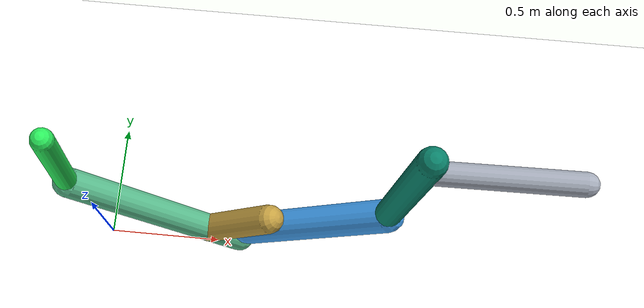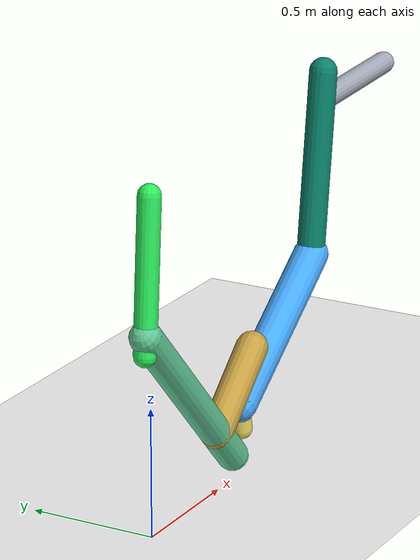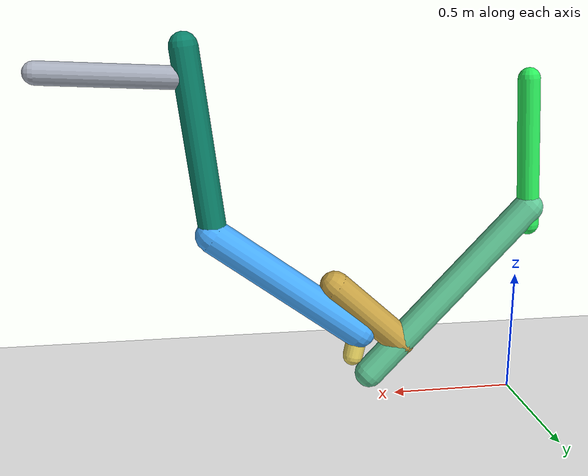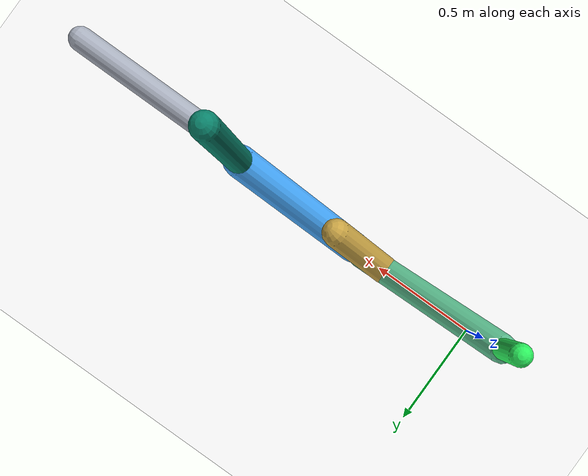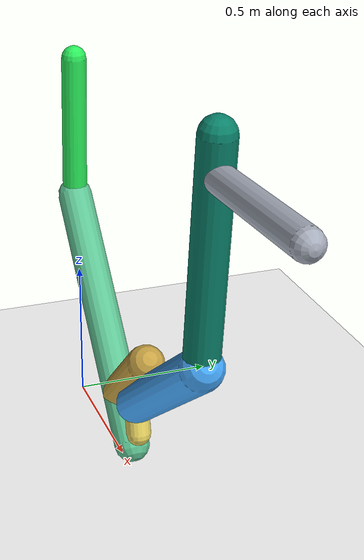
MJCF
<mujoco model="morphology">
  <option timestep="0.01"/>
  <default>
    <default class="/"/>
    <default class="0/"/>
    <default class="0/1/"/>
    <default class="0/1/2/"/>
    <default class="0/1/2/3/"/>
    <default class="0/1/2/3/4/"/>
    <default class="0/1/2/3/4/5/"/>
    <default class="0/1/2/3/4/5/6/"/>
  </default>
  <asset>
    <texture name="texplane" type="2d" builtin="checker" rgb1="0.10000000000000001 0.20000000000000001 0.29999999999999999" rgb2="0.20000000000000001 0.29999999999999999 0.40000000000000002" width="300" height="300"/>
    <material name="MatPlane" class="/" texture="texplane" texrepeat="20 20" specular="1" shininess="1" reflectance="0.5"/>
  </asset>
  <worldbody>
    <light name="//unnamed_light_0" class="/" directional="true" pos="0 0 1.5" dir="0 0 -1.3" cutoff="100" exponent="1" diffuse="1 1 1" specular="0.10000000000000001 0.10000000000000001 0.10000000000000001"/>
    <geom name="ground" class="/" type="plane" size="15 15 0.5" material="MatPlane" rgba="1 1 1 1"/>
    <site name="body" class="/" size="9.9999999999999995e-07 9.9999999999999995e-07 9.9999999999999995e-07" pos="0 0 1.3008655071258546"/>
    <body pos="0 0 1.3008655071258546" name="0/">
      <joint name="0/rootx/" class="/" type="slide" axis="1 0 0" limited="false" stiffness="0" armature="0" damping="0"/>
      <joint name="0/rootz/" class="/" type="slide" axis="0 0 1" limited="false" stiffness="0" armature="0" damping="0"/>
      <joint name="0/rooty/" class="/" type="hinge" axis="0 1 0" limited="false" stiffness="0" armature="0" damping="0"/>
      <geom name="0/geom" class="0/" type="capsule" contype="1" conaffinity="1" condim="3" size="0.043674176087772007" rgba="0.16727525094553952 0.93400194686001081 0.36261962887971788 1" friction="0.59999999999999998 0.10000000000000001 0.10000000000000001" fromto="0 0 0 -0.038450582545533907 0 -0.58341256267076602"/>
      <site name="0/end0" class="0/" size="0.0050000000000000001" pos="-0.038450582545533907 0 -0.58341256267076602"/>
      <site name="0/attach1" class="0/" size="9.9999999999999995e-07 9.9999999999999995e-07 9.9999999999999995e-07" pos="-0.033980599630965676 0 -0.51558929408453502"/>
      <body pos="-0.033980599630965676 0 -0.51558929408453502" name="0/1/">
        <geom name="0/1/geom" class="0/1/" type="capsule" contype="1" conaffinity="1" condim="3" size="0.060825436471315872" rgba="0.37314739954846077 0.77566347868447372 0.5833335235959749 1" friction="0.59999999999999998 0.10000000000000001 0.10000000000000001" fromto="0 0 0 0.64454931618638334 0 -0.68527625245607227"/>
        <site name="0/1/end1" class="0/1/" size="0.0050000000000000001" pos="0.64454931618638334 0 -0.68527625245607227"/>
        <site name="0/1/attach2" class="0/1/" size="9.9999999999999995e-07 9.9999999999999995e-07 9.9999999999999995e-07" pos="0.5170230991900715 0 -0.54969207622856731"/>
        <body pos="0.5170230991900715 0 -0.54969207622856731" name="0/1/2/">
          <joint name="0/1/2/joint/" class="0/1/" type="hinge" axis="0 1 0" limited="true" range="-40.603135111386806 40.603135111386806"/>
          <geom name="0/1/2/geom" class="0/1/2/" type="capsule" contype="1" conaffinity="1" condim="3" size="0.062618792614747745" rgba="0.7818432317806544 0.63666535437827965 0.26563960954572596 1" friction="0.59999999999999998 0.10000000000000001 0.10000000000000001" fromto="0 0 0 0.27733510112561977 0 0.25115391614139204"/>
          <site name="0/1/2/end2" class="0/1/2/" size="0.0050000000000000001" pos="0.27733510112561977 0 0.25115391614139204"/>
          <site name="0/1/2/attach3" class="0/1/2/" size="9.9999999999999995e-07 9.9999999999999995e-07 9.9999999999999995e-07" pos="0.15672822008965073 0 0.14193265145891587"/>
          <body pos="0.15672822008965073 0 0.14193265145891587" name="0/1/2/3/">
            <joint name="0/1/2/3/joint/" class="0/1/2/" type="hinge" axis="0 1 0" limited="true" range="-57.96283910458115 57.96283910458115"/>
            <geom name="0/1/2/3/geom" class="0/1/2/3/" type="capsule" contype="1" conaffinity="1" condim="3" size="0.041588789959918313" rgba="0.92874390612803404 0.84656950065529679 0.38676632427393232 1" friction="0.59999999999999998 0.10000000000000001 0.10000000000000001" fromto="0 0 0 0.042615185427918645 0 -0.19444567079566766"/>
            <site name="0/1/2/3/end3" class="0/1/2/3/" size="0.0050000000000000001" pos="0.042615185427918645 0 -0.19444567079566766"/>
            <site name="0/1/2/3/attach4" class="0/1/2/3/" size="9.9999999999999995e-07 9.9999999999999995e-07 9.9999999999999995e-07" pos="0.019781462671299287 0 -0.090259369748519974"/>
            <body pos="0.019781462671299287 0 -0.090259369748519974" name="0/1/2/3/4/">
              <joint name="0/1/2/3/4/joint/" class="0/1/2/3/" type="hinge" axis="0 1 0" limited="true" range="-46.002654722810377 46.002654722810377"/>
              <geom name="0/1/2/3/4/geom" class="0/1/2/3/4/" type="capsule" contype="1" conaffinity="1" condim="3" size="0.068590266666588878" rgba="0.27461937278816273 0.66515390885025016 0.99465471223225999 1" friction="0.59999999999999998 0.10000000000000001 0.10000000000000001" fromto="0 0 0 0.58478964060966088 0 0.42773010394160682"/>
              <site name="0/1/2/3/4/end4" class="0/1/2/3/4/" size="0.0050000000000000001" pos="0.58478964060966088 0 0.42773010394160682"/>
              <site name="0/1/2/3/4/attach5" class="0/1/2/3/4/" size="9.9999999999999995e-07 9.9999999999999995e-07 9.9999999999999995e-07" pos="0.58082451997555262 0 0.42482991326928232"/>
              <body pos="0.58082451997555262 0 0.42482991326928232" name="0/1/2/3/4/5/">
                <joint name="0/1/2/3/4/5/joint/" class="0/1/2/3/4/" type="hinge" axis="0 1 0" limited="true" range="-47.589908495347188 47.589908495347188"/>
                <geom name="0/1/2/3/4/5/geom" class="0/1/2/3/4/5/" type="capsule" contype="1" conaffinity="1" condim="3" size="0.055044417919745327" rgba="0.03578205341031182 0.50737513538635282 0.41476286136094909 1" friction="0.59999999999999998 0.10000000000000001 0.10000000000000001" fromto="0 0 0 0.090569041164211495 0 0.71693391572096754"/>
                <site name="0/1/2/3/4/5/end5" class="0/1/2/3/4/5/" size="0.0050000000000000001" pos="0.090569041164211495 0 0.71693391572096754"/>
                <site name="0/1/2/3/4/5/attach6" class="0/1/2/3/4/5/" size="9.9999999999999995e-07 9.9999999999999995e-07 9.9999999999999995e-07" pos="0.076297250227156874 0 0.60396009122941774"/>
                <body pos="0.076297250227156874 0 0.60396009122941774" name="0/1/2/3/4/5/6/">
                  <joint name="0/1/2/3/4/5/6/joint/" class="0/1/2/3/4/5/" type="hinge" axis="0 1 0" limited="true" range="-41.273600235675147 41.273600235675147"/>
                  <geom name="0/1/2/3/4/5/6/geom" class="0/1/2/3/4/5/6/" type="capsule" contype="1" conaffinity="1" condim="3" size="0.043861565139701096" rgba="0.65407289191076801 0.68012786388450541 0.73504965615933393 1" friction="0.59999999999999998 0.10000000000000001 0.10000000000000001" fromto="0 0 0 0.54387984977333126 0 0.02302563300379723"/>
                  <site name="0/1/2/3/4/5/6/end6" class="0/1/2/3/4/5/6/" size="0.0050000000000000001" pos="0.54387984977333126 0 0.02302563300379723"/>
                </body>
              </body>
            </body>
          </body>
        </body>
      </body>
      <camera name="0/side" class="0/" mode="trackcom" pos="0.40000000000000002 -4 0.20000000000000001" quat="0.70699999999999996 0.70699999999999996 0 0"/>
    </body>
  </worldbody>
  <actuator>
    <motor name="0/1/2/motor" class="0/1/2/" ctrllimited="true" ctrlrange="-1 1" gear="72" joint="0/1/2/joint/"/>
    <motor name="0/1/2/3/motor" class="0/1/2/3/" ctrllimited="true" ctrlrange="-1 1" gear="79" joint="0/1/2/3/joint/"/>
    <motor name="0/1/2/3/4/motor" class="0/1/2/3/4/" ctrllimited="true" ctrlrange="-1 1" gear="55" joint="0/1/2/3/4/joint/"/>
    <motor name="0/1/2/3/4/5/motor" class="0/1/2/3/4/5/" ctrllimited="true" ctrlrange="-1 1" gear="84" joint="0/1/2/3/4/5/joint/"/>
    <motor name="0/1/2/3/4/5/6/motor" class="0/1/2/3/4/5/6/" ctrllimited="true" ctrlrange="-1 1" gear="66" joint="0/1/2/3/4/5/6/joint/"/>
  </actuator>
  <sensor>
    <subtreelinvel name="velocity" body="0/"/>
  </sensor>
</mujoco>
